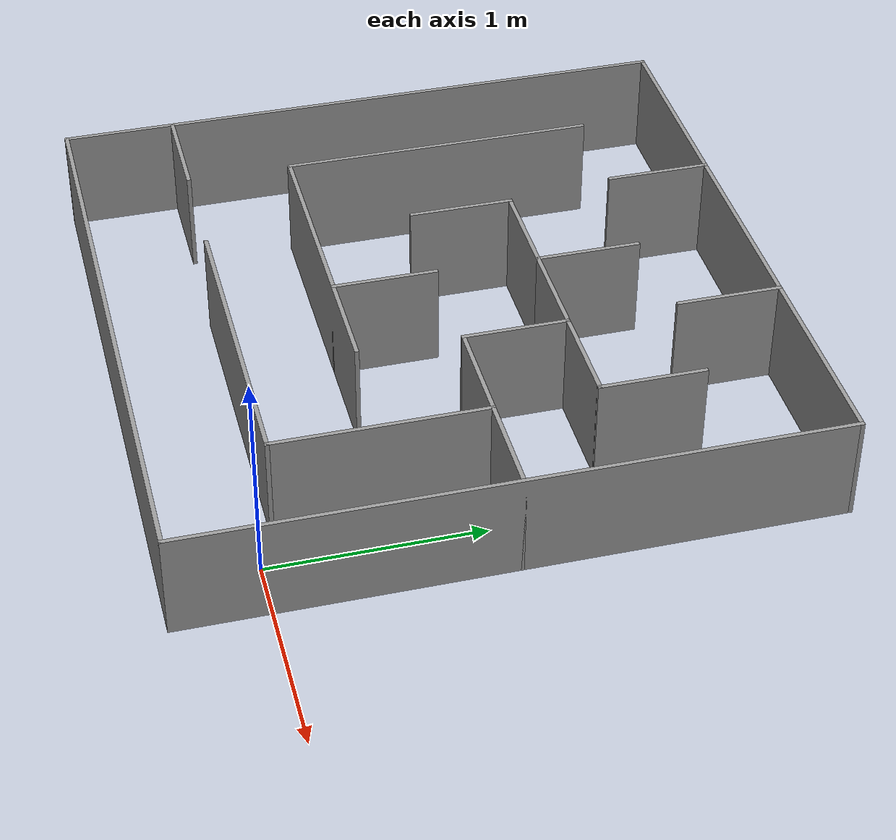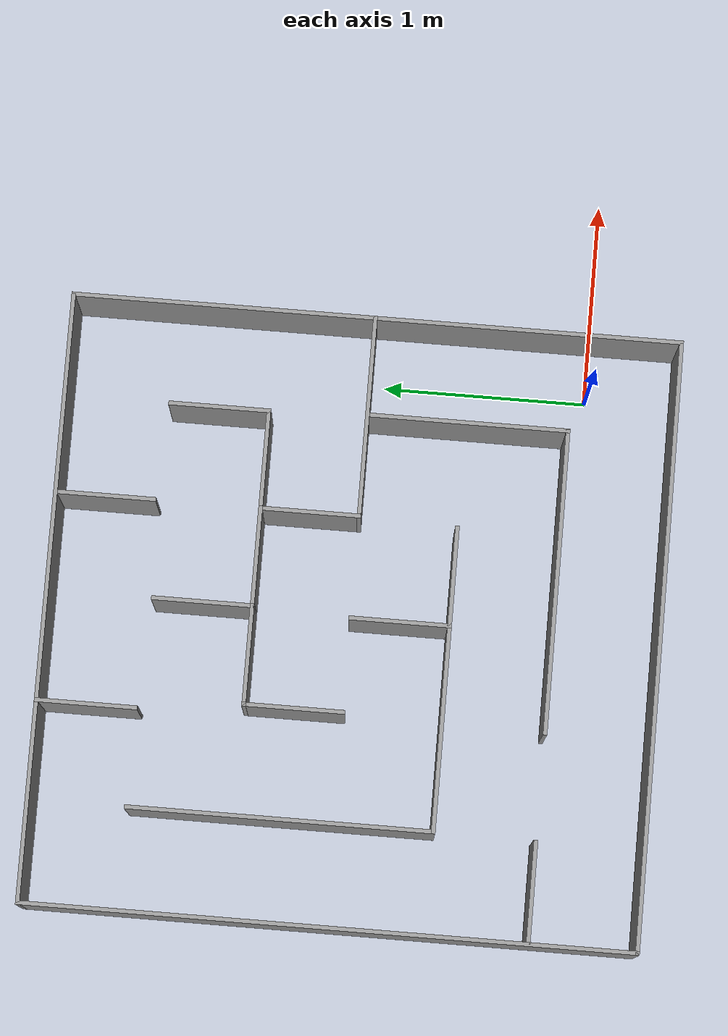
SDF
<?xml version='1.0'?>
<sdf version='1.7'>
  <model name='my_maze'>
    <pose>-1.23 1.06 0 0 -0 0</pose>
    <link name='Wall_16'>
      <collision name='Wall_16_Collision'>
        <geometry>
          <box>
            <size>3 0.02 0.5</size>
          </box>
        </geometry>
        <pose>0 0 0.25 0 -0 0</pose>
      </collision>
      <visual name='Wall_16_Visual'>
        <pose>0 0 0.25 0 -0 0</pose>
        <geometry>
          <box>
            <size>3 0.02 0.5</size>
          </box>
        </geometry>
        <material>
          <script>
            <uri>file://media/materials/scripts/gazebo.material</uri>
            <name>Gazebo/Grey</name>
          </script>
          <ambient>1 1 1 1</ambient>
        </material>
        <meta>
          <layer>0</layer>
        </meta>
      </visual>
      <pose>1.49 0 0 0 -0 1.5708</pose>
    </link>
    <link name='Wall_17'>
      <collision name='Wall_17_Collision'>
        <geometry>
          <box>
            <size>3 0.02 0.5</size>
          </box>
        </geometry>
        <pose>0 0 0.25 0 -0 0</pose>
      </collision>
      <visual name='Wall_17_Visual'>
        <pose>0 0 0.25 0 -0 0</pose>
        <geometry>
          <box>
            <size>3 0.02 0.5</size>
          </box>
        </geometry>
        <material>
          <script>
            <uri>file://media/materials/scripts/gazebo.material</uri>
            <name>Gazebo/Grey</name>
          </script>
          <ambient>1 1 1 1</ambient>
        </material>
        <meta>
          <layer>0</layer>
        </meta>
      </visual>
      <pose>0 1.49 0 0 -0 3.14159</pose>
    </link>
    <link name='Wall_18'>
      <collision name='Wall_18_Collision'>
        <geometry>
          <box>
            <size>3 0.02 0.5</size>
          </box>
        </geometry>
        <pose>0 0 0.25 0 -0 0</pose>
      </collision>
      <visual name='Wall_18_Visual'>
        <pose>0 0 0.25 0 -0 0</pose>
        <geometry>
          <box>
            <size>3 0.02 0.5</size>
          </box>
        </geometry>
        <material>
          <script>
            <uri>file://media/materials/scripts/gazebo.material</uri>
            <name>Gazebo/Grey</name>
          </script>
          <ambient>1 1 1 1</ambient>
        </material>
        <meta>
          <layer>0</layer>
        </meta>
      </visual>
      <pose>-1.49 0 0 0 -0 -1.5708</pose>
    </link>
    <link name='Wall_19'>
      <collision name='Wall_19_Collision'>
        <geometry>
          <box>
            <size>3 0.02 0.5</size>
          </box>
        </geometry>
        <pose>0 0 0.25 0 -0 0</pose>
      </collision>
      <visual name='Wall_19_Visual'>
        <pose>0 0 0.25 0 -0 0</pose>
        <geometry>
          <box>
            <size>3 0.02 0.5</size>
          </box>
        </geometry>
        <material>
          <script>
            <uri>file://media/materials/scripts/gazebo.material</uri>
            <name>Gazebo/Grey</name>
          </script>
          <ambient>1 1 1 1</ambient>
        </material>
        <meta>
          <layer>0</layer>
        </meta>
      </visual>
      <pose>0 -1.49 0 0 -0 0</pose>
    </link>
    <link name='Wall_32'>
      <collision name='Wall_32_Collision'>
        <geometry>
          <box>
            <size>0.5 0.02 0.5</size>
          </box>
        </geometry>
        <pose>0 0 0.25 0 -0 0</pose>
      </collision>
      <visual name='Wall_32_Visual'>
        <pose>0 0 0.25 0 -0 0</pose>
        <geometry>
          <box>
            <size>0.5 0.02 0.5</size>
          </box>
        </geometry>
        <material>
          <script>
            <uri>file://media/materials/scripts/gazebo.material</uri>
            <name>Gazebo/Grey</name>
          </script>
          <ambient>1 1 1 1</ambient>
        </material>
        <meta>
          <layer>0</layer>
        </meta>
      </visual>
      <pose>-0.51 1.25 0 0 -0 -1.5708</pose>
    </link>
    <link name='Wall_35'>
      <collision name='Wall_35_Collision'>
        <geometry>
          <box>
            <size>0.5 0.02 0.5</size>
          </box>
        </geometry>
        <pose>0 0 0.25 0 -0 0</pose>
      </collision>
      <visual name='Wall_35_Visual'>
        <pose>0 0 0.25 0 -0 0</pose>
        <geometry>
          <box>
            <size>0.5 0.02 0.5</size>
          </box>
        </geometry>
        <material>
          <script>
            <uri>file://media/materials/scripts/gazebo.material</uri>
            <name>Gazebo/Grey</name>
          </script>
          <ambient>1 1 1 1</ambient>
        </material>
        <meta>
          <layer>0</layer>
        </meta>
      </visual>
      <pose>0.51 1.25 0 0 -0 -1.5708</pose>
    </link>
    <link name='Wall_39'>
      <collision name='Wall_39_Collision'>
        <geometry>
          <box>
            <size>1.5 0.02 0.5</size>
          </box>
        </geometry>
        <pose>0 0 0.25 0 -0 0</pose>
      </collision>
      <visual name='Wall_39_Visual'>
        <pose>0 0 0.25 0 -0 0</pose>
        <geometry>
          <box>
            <size>1.5 0.02 0.5</size>
          </box>
        </geometry>
        <material>
          <script>
            <uri>file://media/materials/scripts/gazebo.material</uri>
            <name>Gazebo/Grey</name>
          </script>
          <ambient>1 1 1 1</ambient>
        </material>
        <meta>
          <layer>0</layer>
        </meta>
      </visual>
      <pose>-0.99 0.27 0 0 -0 -1.5708</pose>
    </link>
    <link name='Wall_40'>
      <collision name='Wall_40_Collision'>
        <geometry>
          <box>
            <size>1.5 0.02 0.5</size>
          </box>
        </geometry>
        <pose>0 0 0.25 0 -0 0</pose>
      </collision>
      <visual name='Wall_40_Visual'>
        <pose>0 0 0.25 0 -0 0</pose>
        <geometry>
          <box>
            <size>1.5 0.02 0.5</size>
          </box>
        </geometry>
        <material>
          <script>
            <uri>file://media/materials/scripts/gazebo.material</uri>
            <name>Gazebo/Grey</name>
          </script>
          <ambient>1 1 1 1</ambient>
        </material>
        <meta>
          <layer>0</layer>
        </meta>
      </visual>
      <pose>-0.25 -0.47 0 0 -0 0</pose>
    </link>
    <link name='Wall_42'>
      <collision name='Wall_42_Collision'>
        <geometry>
          <box>
            <size>0.5 0.02 0.5</size>
          </box>
        </geometry>
        <pose>0 0 0.25 0 -0 0</pose>
      </collision>
      <visual name='Wall_42_Visual'>
        <pose>0 0 0.25 0 -0 0</pose>
        <geometry>
          <box>
            <size>0.5 0.02 0.5</size>
          </box>
        </geometry>
        <material>
          <script>
            <uri>file://media/materials/scripts/gazebo.material</uri>
            <name>Gazebo/Grey</name>
          </script>
          <ambient>1 1 1 1</ambient>
        </material>
        <meta>
          <layer>0</layer>
        </meta>
      </visual>
      <pose>0.01 -0.23 0 0 -0 1.5708</pose>
    </link>
    <link name='Wall_45'>
      <collision name='Wall_45_Collision'>
        <geometry>
          <box>
            <size>1 0.02 0.5</size>
          </box>
        </geometry>
        <pose>0 0 0.25 0 -0 0</pose>
      </collision>
      <visual name='Wall_45_Visual'>
        <pose>0 0 0.25 0 -0 0</pose>
        <geometry>
          <box>
            <size>1 0.02 0.5</size>
          </box>
        </geometry>
        <material>
          <script>
            <uri>file://media/materials/scripts/gazebo.material</uri>
            <name>Gazebo/Grey</name>
          </script>
          <ambient>1 1 1 1</ambient>
        </material>
        <meta>
          <layer>0</layer>
        </meta>
      </visual>
      <pose>1 0.01 0 0 -0 3.14159</pose>
    </link>
    <link name='Wall_46'>
      <collision name='Wall_46_Collision'>
        <geometry>
          <box>
            <size>0.5 0.02 0.5</size>
          </box>
        </geometry>
        <pose>0 0 0.25 0 -0 0</pose>
      </collision>
      <visual name='Wall_46_Visual'>
        <pose>0 0 0.25 0 -0 0</pose>
        <geometry>
          <box>
            <size>0.5 0.02 0.5</size>
          </box>
        </geometry>
        <material>
          <script>
            <uri>file://media/materials/scripts/gazebo.material</uri>
            <name>Gazebo/Grey</name>
          </script>
          <ambient>1 1 1 1</ambient>
        </material>
        <meta>
          <layer>0</layer>
        </meta>
      </visual>
      <pose>0.51 0.25 0 0 -0 1.5708</pose>
    </link>
    <link name='Wall_47'>
      <collision name='Wall_47_Collision'>
        <geometry>
          <box>
            <size>0.5 0.02 0.5</size>
          </box>
        </geometry>
        <pose>0 0 0.25 0 -0 0</pose>
      </collision>
      <visual name='Wall_47_Visual'>
        <pose>0 0 0.25 0 -0 0</pose>
        <geometry>
          <box>
            <size>0.5 0.02 0.5</size>
          </box>
        </geometry>
        <material>
          <script>
            <uri>file://media/materials/scripts/gazebo.material</uri>
            <name>Gazebo/Grey</name>
          </script>
          <ambient>1 1 1 1</ambient>
        </material>
        <meta>
          <layer>0</layer>
        </meta>
      </visual>
      <pose>0.75 0.49 0 0 -0 0</pose>
    </link>
    <link name='Wall_48'>
      <collision name='Wall_48_Collision'>
        <geometry>
          <box>
            <size>0.5 0.02 0.5</size>
          </box>
        </geometry>
        <pose>0 0 0.25 0 -0 0</pose>
      </collision>
      <visual name='Wall_48_Visual'>
        <pose>0 0 0.25 0 -0 0</pose>
        <geometry>
          <box>
            <size>0.5 0.02 0.5</size>
          </box>
        </geometry>
        <material>
          <script>
            <uri>file://media/materials/scripts/gazebo.material</uri>
            <name>Gazebo/Grey</name>
          </script>
          <ambient>1 1 1 1</ambient>
        </material>
        <meta>
          <layer>0</layer>
        </meta>
      </visual>
      <pose>0.99 0.73 0 0 -0 1.5708</pose>
    </link>
    <link name='Wall_51'>
      <collision name='Wall_51_Collision'>
        <geometry>
          <box>
            <size>0.5 0.02 0.5</size>
          </box>
        </geometry>
        <pose>0 0 0.25 0 -0 0</pose>
      </collision>
      <visual name='Wall_51_Visual'>
        <pose>0 0 0.25 0 -0 0</pose>
        <geometry>
          <box>
            <size>0.5 0.02 0.5</size>
          </box>
        </geometry>
        <material>
          <script>
            <uri>file://media/materials/scripts/gazebo.material</uri>
            <name>Gazebo/Grey</name>
          </script>
          <ambient>1 1 1 1</ambient>
        </material>
        <meta>
          <layer>0</layer>
        </meta>
      </visual>
      <pose>0.27 0.49 0 0 -0 3.14159</pose>
    </link>
    <link name='Wall_53'>
      <collision name='Wall_53_Collision'>
        <geometry>
          <box>
            <size>0.5 0.02 0.5</size>
          </box>
        </geometry>
        <pose>0 0 0.25 0 -0 0</pose>
      </collision>
      <visual name='Wall_53_Visual'>
        <pose>0 0 0.25 0 -0 0</pose>
        <geometry>
          <box>
            <size>0.5 0.02 0.5</size>
          </box>
        </geometry>
        <material>
          <script>
            <uri>file://media/materials/scripts/gazebo.material</uri>
            <name>Gazebo/Grey</name>
          </script>
          <ambient>1 1 1 1</ambient>
        </material>
        <meta>
          <layer>0</layer>
        </meta>
      </visual>
      <pose>0.03 0.73 0 0 -0 -1.5708</pose>
    </link>
    <link name='Wall_54'>
      <collision name='Wall_54_Collision'>
        <geometry>
          <box>
            <size>0.5 0.02 0.5</size>
          </box>
        </geometry>
        <pose>0 0 0.25 0 -0 0</pose>
      </collision>
      <visual name='Wall_54_Visual'>
        <pose>0 0 0.25 0 -0 0</pose>
        <geometry>
          <box>
            <size>0.5 0.02 0.5</size>
          </box>
        </geometry>
        <material>
          <script>
            <uri>file://media/materials/scripts/gazebo.material</uri>
            <name>Gazebo/Grey</name>
          </script>
          <ambient>1 1 1 1</ambient>
        </material>
        <meta>
          <layer>0</layer>
        </meta>
      </visual>
      <pose>-0.21 0.49 0 0 -0 3.14159</pose>
    </link>
    <link name='Wall_57'>
      <collision name='Wall_57_Collision'>
        <geometry>
          <box>
            <size>0.5 0.02 0.5</size>
          </box>
        </geometry>
        <pose>0 0 0.25 0 -0 0</pose>
      </collision>
      <visual name='Wall_57_Visual'>
        <pose>0 0 0.25 0 -0 0</pose>
        <geometry>
          <box>
            <size>0.5 0.02 0.5</size>
          </box>
        </geometry>
        <material>
          <script>
            <uri>file://media/materials/scripts/gazebo.material</uri>
            <name>Gazebo/Grey</name>
          </script>
          <ambient>1 1 1 1</ambient>
        </material>
        <meta>
          <layer>0</layer>
        </meta>
      </visual>
      <pose>-0.45 0.25 0 0 -0 -1.5708</pose>
    </link>
    <link name='Wall_60'>
      <collision name='Wall_60_Collision'>
        <geometry>
          <box>
            <size>1 0.02 0.5</size>
          </box>
        </geometry>
        <pose>0 0 0.25 0 -0 0</pose>
      </collision>
      <visual name='Wall_60_Visual'>
        <pose>0 0 0.25 0 -0 0</pose>
        <geometry>
          <box>
            <size>1 0.02 0.5</size>
          </box>
        </geometry>
        <material>
          <script>
            <uri>file://media/materials/scripts/gazebo.material</uri>
            <name>Gazebo/Grey</name>
          </script>
          <ambient>1 1 1 1</ambient>
        </material>
        <meta>
          <layer>0</layer>
        </meta>
      </visual>
      <pose>1.01 -0.48 0 0 -0 -1.5708</pose>
    </link>
    <link name='Wall_61'>
      <collision name='Wall_61_Collision'>
        <geometry>
          <box>
            <size>1.5 0.02 0.5</size>
          </box>
        </geometry>
        <pose>0 0 0.25 0 -0 0</pose>
      </collision>
      <visual name='Wall_61_Visual'>
        <pose>0 0 0.25 0 -0 0</pose>
        <geometry>
          <box>
            <size>1.5 0.02 0.5</size>
          </box>
        </geometry>
        <material>
          <script>
            <uri>file://media/materials/scripts/gazebo.material</uri>
            <name>Gazebo/Grey</name>
          </script>
          <ambient>1 1 1 1</ambient>
        </material>
        <meta>
          <layer>0</layer>
        </meta>
      </visual>
      <pose>0.27 -0.97 0 0 -0 3.14159</pose>
    </link>
    <link name='Wall_70'>
      <collision name='Wall_70_Collision'>
        <geometry>
          <box>
            <size>0.5 0.02 0.5</size>
          </box>
        </geometry>
        <pose>0 0 0.25 0 -0 0</pose>
      </collision>
      <visual name='Wall_70_Visual'>
        <pose>0 0 0.25 0 -0 0</pose>
        <geometry>
          <box>
            <size>0.5 0.02 0.5</size>
          </box>
        </geometry>
        <material>
          <script>
            <uri>file://media/materials/scripts/gazebo.material</uri>
            <name>Gazebo/Grey</name>
          </script>
          <ambient>1 1 1 1</ambient>
        </material>
        <meta>
          <layer>0</layer>
        </meta>
      </visual>
      <pose>-1.239 -0.965 0 0 -0 0</pose>
    </link>
    <static>1</static>
  </model>
</sdf>
